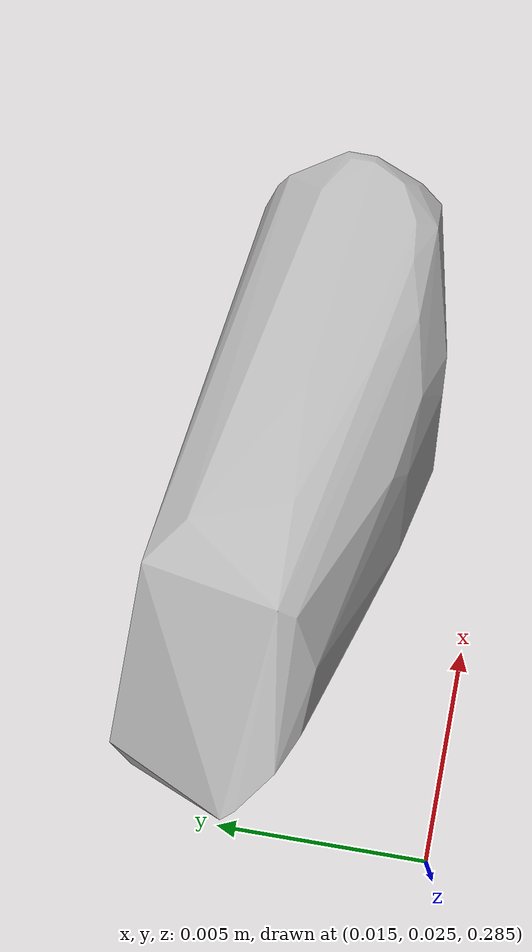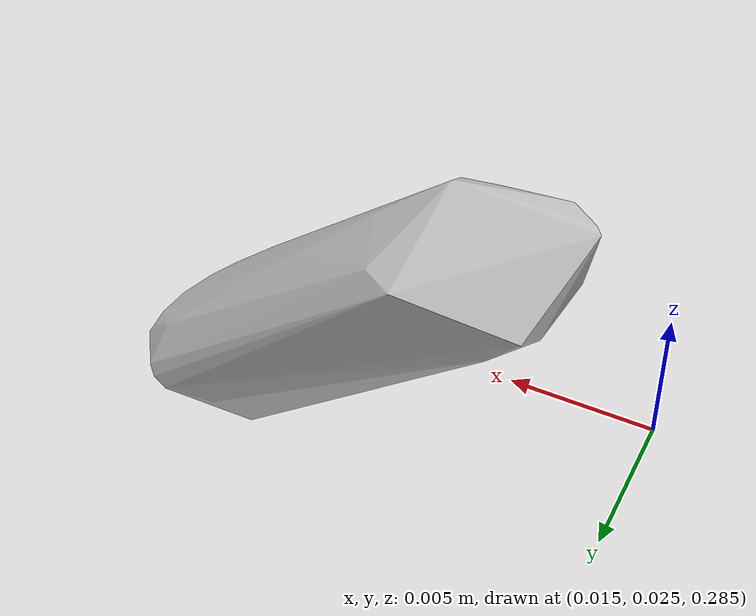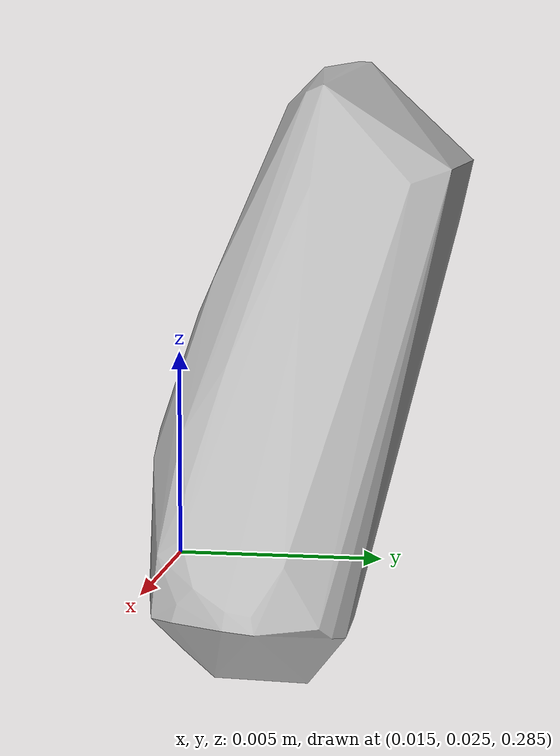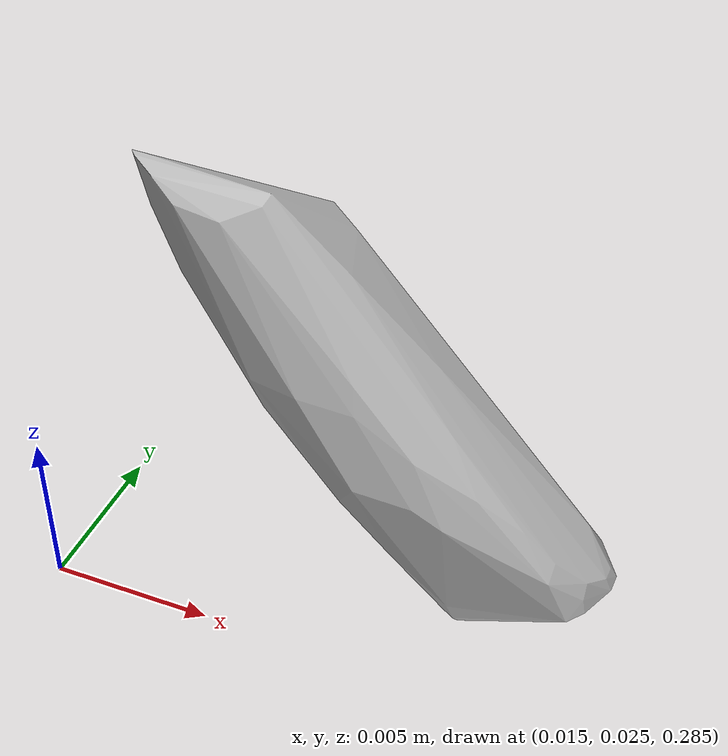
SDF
<?xml version="1.0"?>
<sdf version="1.7">
  <model name="vascular_partexport052">
    <link name="vascular_partexport052_body">
      <visual name="vascular_partexport052_visual">
        <geometry>
          <mesh>
            <uri>vascular_partexport052.obj</uri>
          </mesh>
        </geometry>
      </visual>
      <collision name="vascular_partexport052_collision">
        <geometry>
          <mesh>
            <uri>vascular_partexport052.obj</uri>
          </mesh>
        </geometry>
      </collision>
    </link>
    <frame name="vascular_partexport052_center">
      <pose relative_to="vascular_partexport052_body">0 0 0 0 0 0</pose>
    </frame>
  </model>
</sdf>
